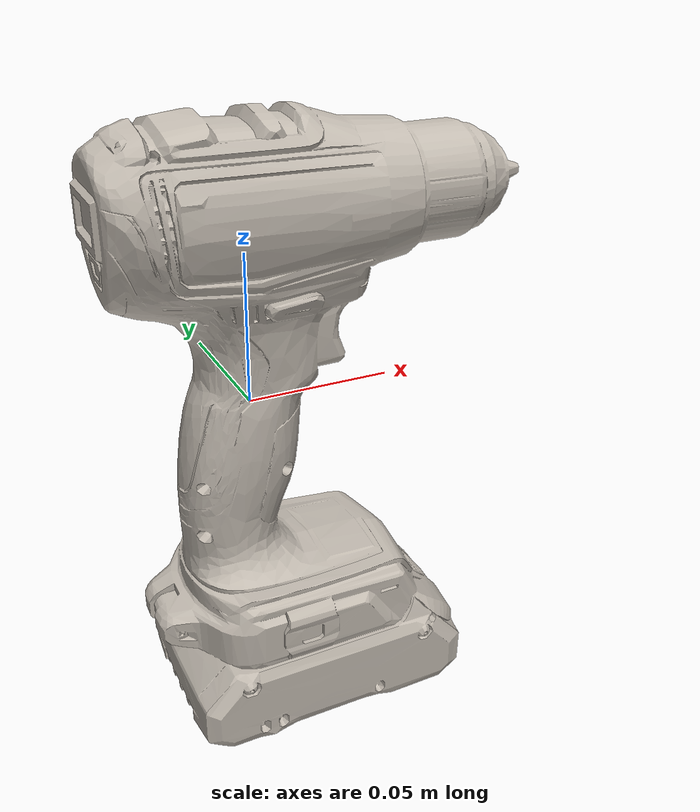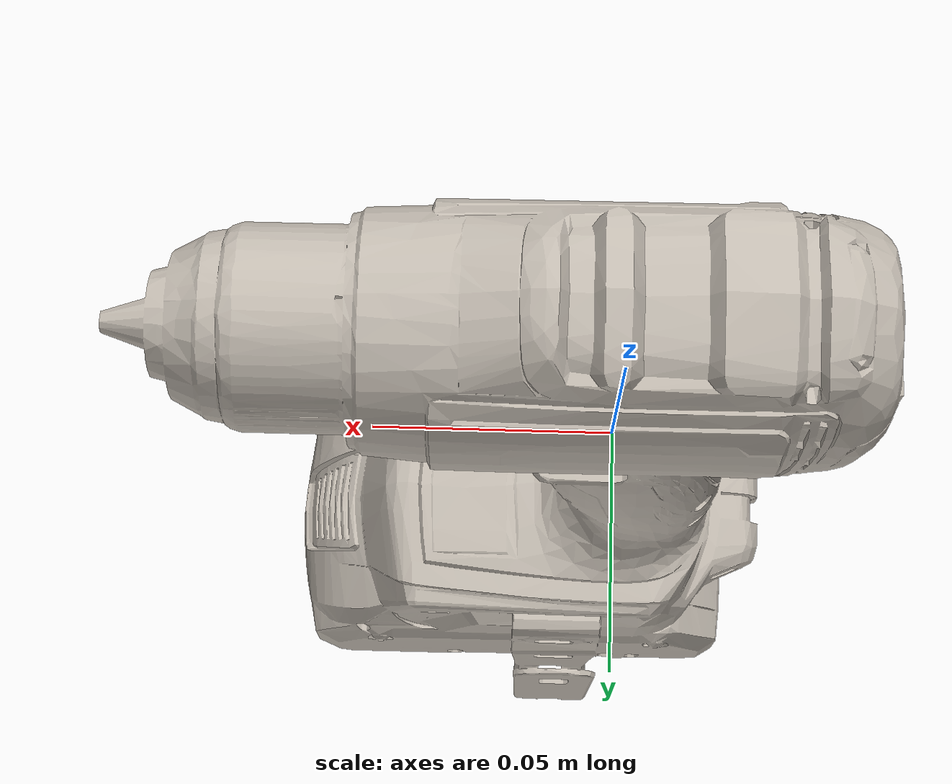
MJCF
<?xml version="1.0" ?>
<mujoco model="material">
  <compiler angle="radian" meshdir="meshes"/>
  <asset>
    <texture name="material_base_color" type="2d" file="texture_pbr_20250901.png"/>
    <material name="material_mat" texture="material_base_color" texuniform="true"/>
    <mesh name="material_visual" file="material_visual.obj"/>
    <mesh name="material_collision" file="material_collision.stl"/>
  </asset>
  <worldbody>
    <body name="base_link" pos="0 0 0">
      <inertial pos="0.012025 -0.001308 -0.023861" mass="0.643895" fullinertia="3.457876e-03 3.839461e-03 6.641697e-04 1.766874e-06 1.459869e-04 -1.455879e-06"/>
      <geom name="visual" type="mesh" mesh="material_visual" contype="0" conaffinity="0" group="2" material="material_mat"/>
      <geom name="collision" type="mesh" mesh="material_collision" contype="1" conaffinity="1" group="3"/>
    </body>
  </worldbody>
</mujoco>
